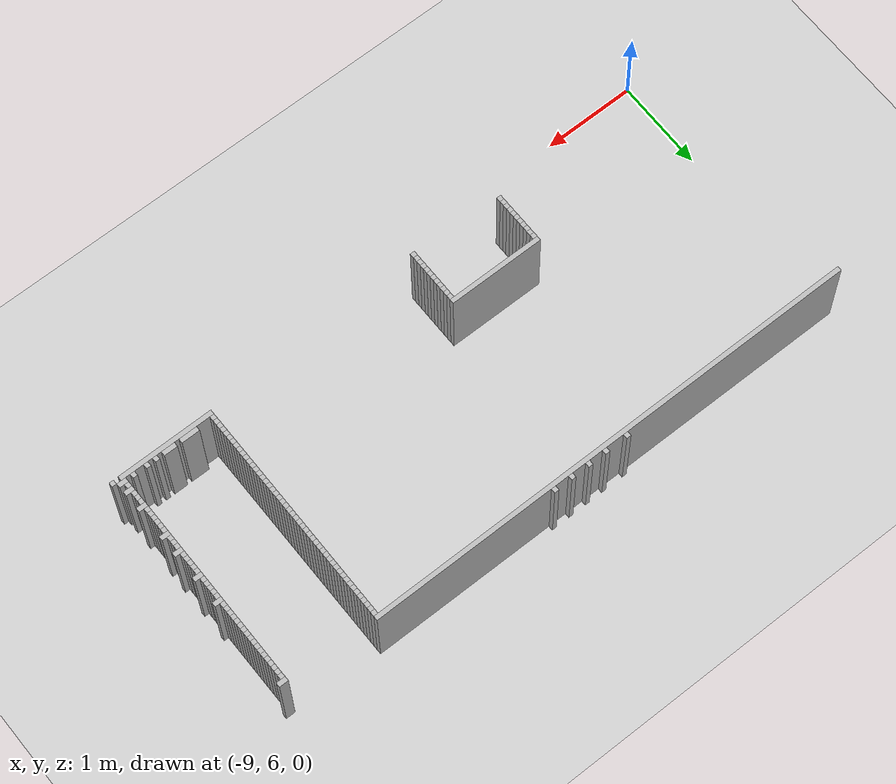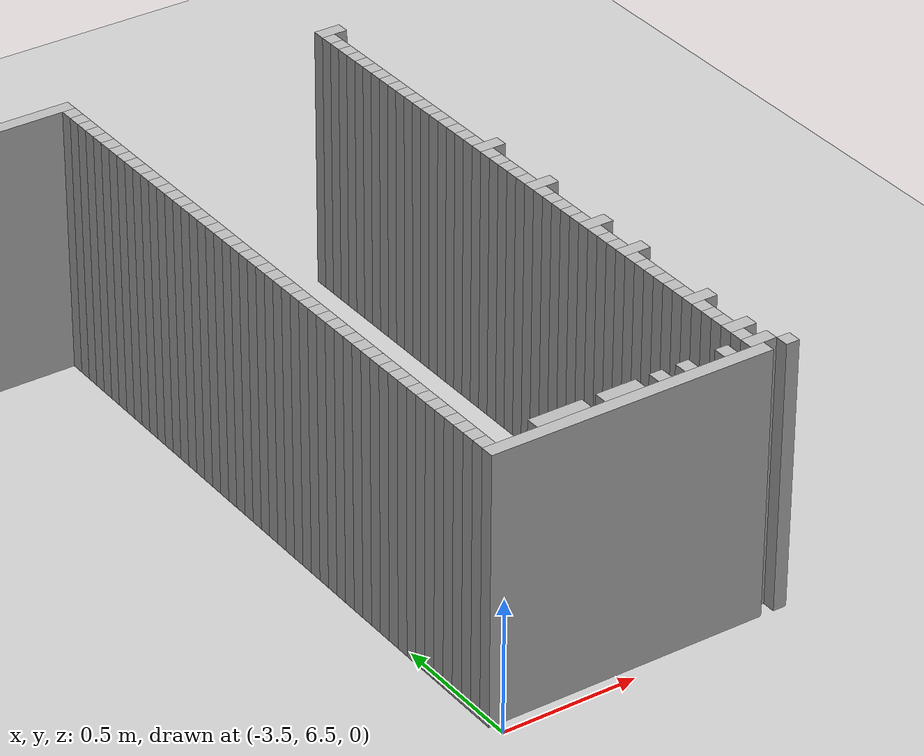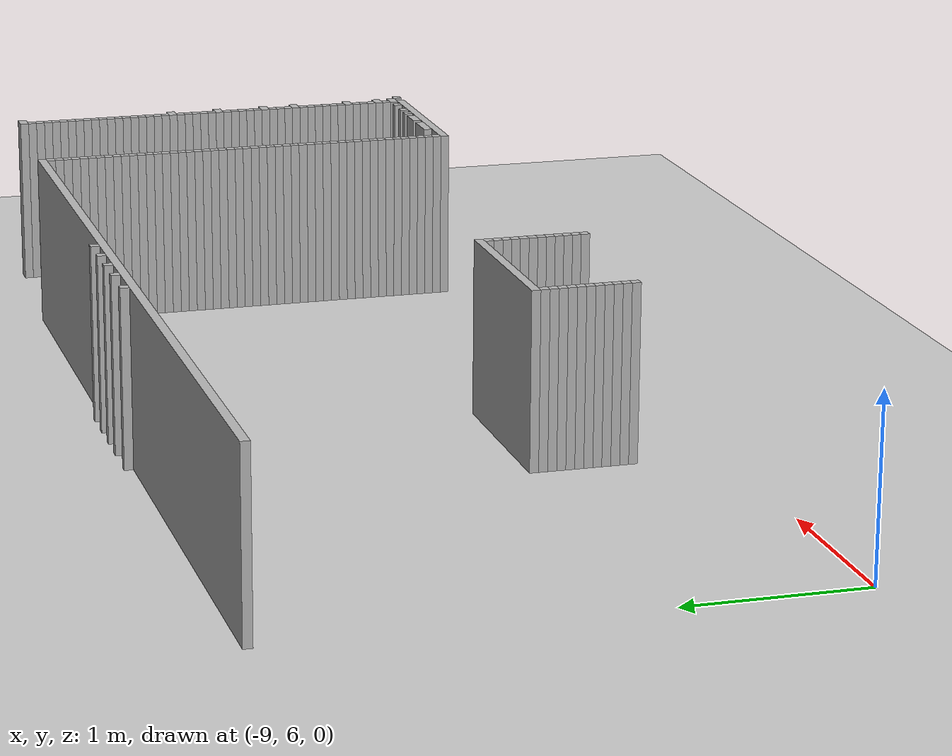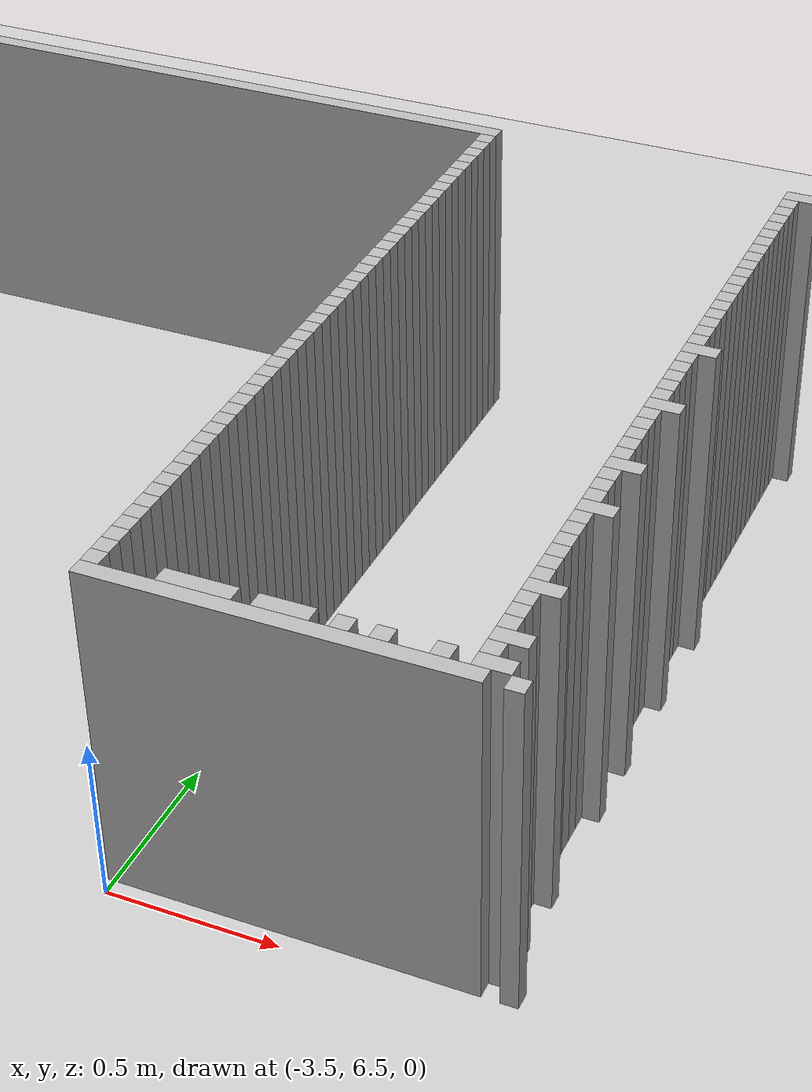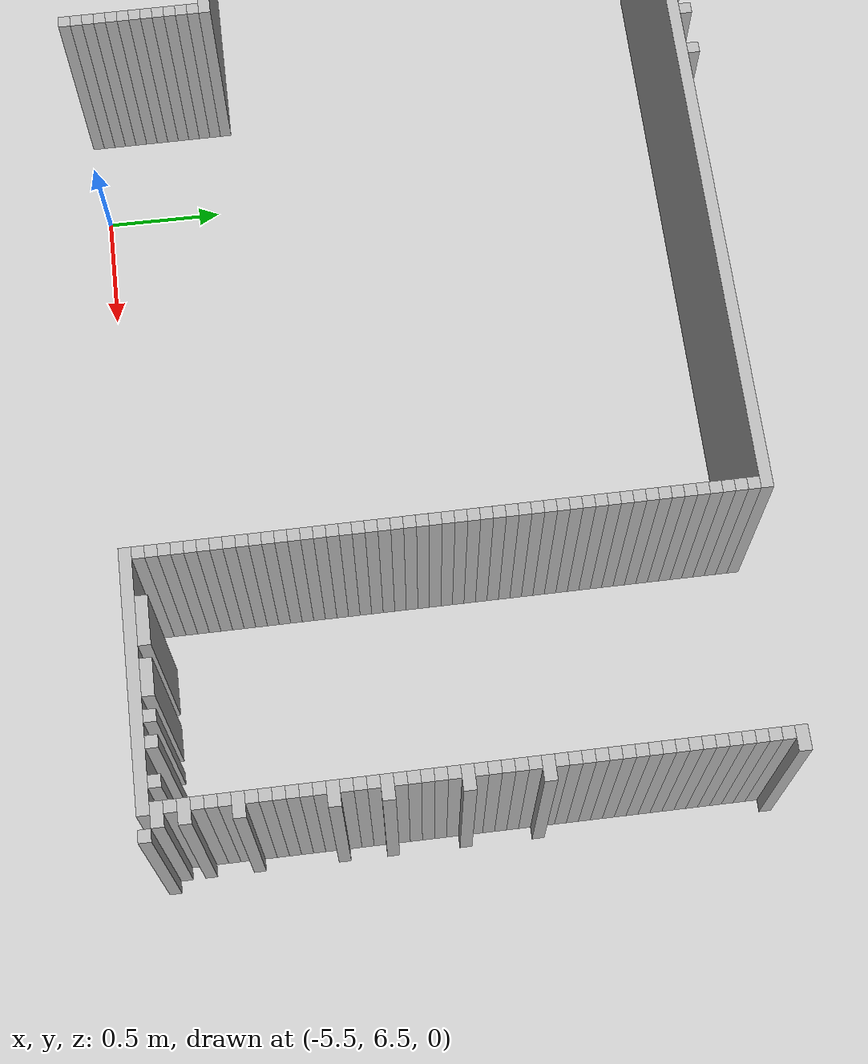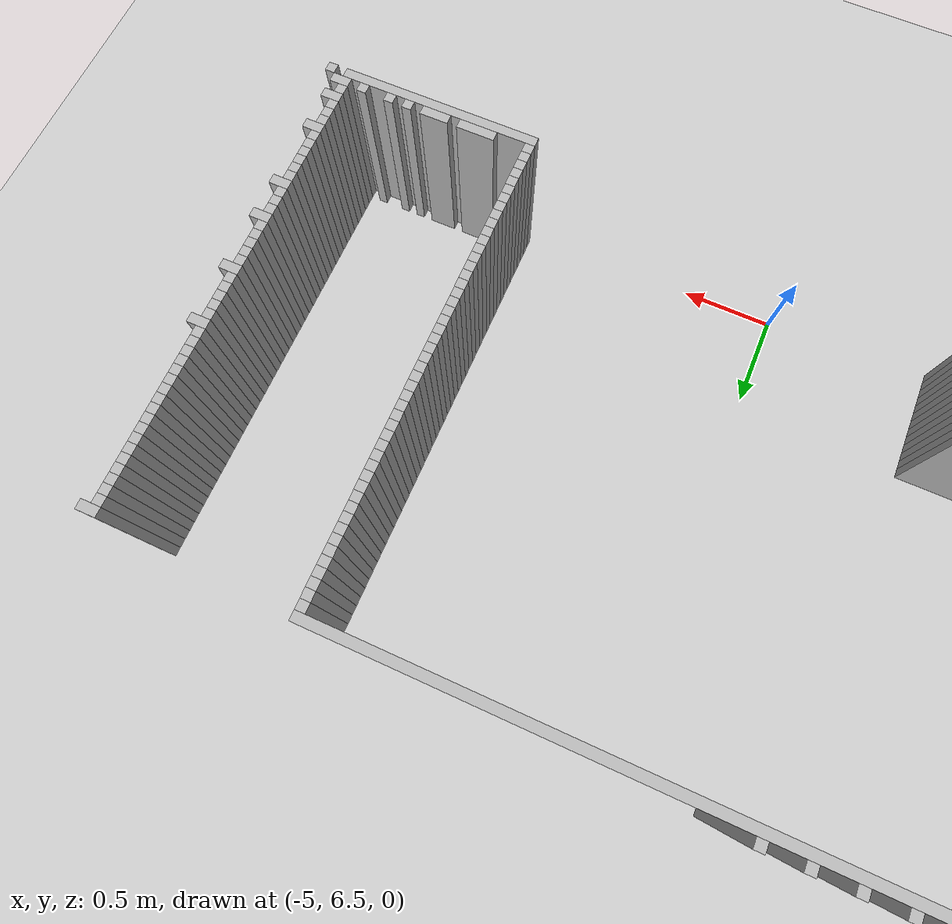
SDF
<sdf version="1.6">
 <world name="udh1_world">
  <include><uri>model://ground_plane</uri></include>
  <include><uri>model://sun</uri></include>
  <model name="wall_0">
   <static>true</static>
   <pose>-6.344999999999999 9.12 0.5 0 0 0</pose>
   <link name="link">
    <collision name="col"><geometry><box><size>0.05 0.05 1</size></box></geometry></collision>
    <visual name="vis"><geometry><box><size>0.05 0.05 1</size></box></geometry></visual>
   </link>
  </model>
  <model name="wall_1">
   <static>true</static>
   <pose>-6.094999999999999 9.12 0.5 0 0 0</pose>
   <link name="link">
    <collision name="col"><geometry><box><size>0.05 0.05 1</size></box></geometry></collision>
    <visual name="vis"><geometry><box><size>0.05 0.05 1</size></box></geometry></visual>
   </link>
  </model>
  <model name="wall_2">
   <static>true</static>
   <pose>-5.895 9.12 0.5 0 0 0</pose>
   <link name="link">
    <collision name="col"><geometry><box><size>0.05 0.05 1</size></box></geometry></collision>
    <visual name="vis"><geometry><box><size>0.05 0.05 1</size></box></geometry></visual>
   </link>
  </model>
  <model name="wall_3">
   <static>true</static>
   <pose>-5.694999999999999 9.12 0.5 0 0 0</pose>
   <link name="link">
    <collision name="col"><geometry><box><size>0.05 0.05 1</size></box></geometry></collision>
    <visual name="vis"><geometry><box><size>0.05 0.05 1</size></box></geometry></visual>
   </link>
  </model>
  <model name="wall_4">
   <static>true</static>
   <pose>-5.494999999999999 9.12 0.5 0 0 0</pose>
   <link name="link">
    <collision name="col"><geometry><box><size>0.05 0.05 1</size></box></geometry></collision>
    <visual name="vis"><geometry><box><size>0.05 0.05 1</size></box></geometry></visual>
   </link>
  </model>
  <model name="wall_5">
   <static>true</static>
   <pose>-6.219999999999999 9.069999999999999 0.5 0 0 0</pose>
   <link name="link">
    <collision name="col"><geometry><box><size>5.5 0.05 1</size></box></geometry></collision>
    <visual name="vis"><geometry><box><size>5.5 0.05 1</size></box></geometry></visual>
   </link>
  </model>
  <model name="wall_8">
   <static>true</static>
   <pose>-3.494999999999999 9.020000000000001 0.5 0 0 0</pose>
   <link name="link">
    <collision name="col"><geometry><box><size>0.05 0.05 1</size></box></geometry></collision>
    <visual name="vis"><geometry><box><size>0.05 0.05 1</size></box></geometry></visual>
   </link>
  </model>
  <model name="wall_9">
   <static>true</static>
   <pose>-2.469999999999999 9.020000000000001 0.5 0 0 0</pose>
   <link name="link">
    <collision name="col"><geometry><box><size>0.1 0.05 1</size></box></geometry></collision>
    <visual name="vis"><geometry><box><size>0.1 0.05 1</size></box></geometry></visual>
   </link>
  </model>
  <model name="wall_43">
   <static>true</static>
   <pose>-3.494999999999999 8.97 0.5 0 0 0</pose>
   <link name="link">
    <collision name="col"><geometry><box><size>0.05 0.05 1</size></box></geometry></collision>
    <visual name="vis"><geometry><box><size>0.05 0.05 1</size></box></geometry></visual>
   </link>
  </model>
  <model name="wall_44">
   <static>true</static>
   <pose>-2.494999999999999 8.97 0.5 0 0 0</pose>
   <link name="link">
    <collision name="col"><geometry><box><size>0.05 0.05 1</size></box></geometry></collision>
    <visual name="vis"><geometry><box><size>0.05 0.05 1</size></box></geometry></visual>
   </link>
  </model>
  <model name="wall_47">
   <static>true</static>
   <pose>-3.494999999999999 8.92 0.5 0 0 0</pose>
   <link name="link">
    <collision name="col"><geometry><box><size>0.05 0.05 1</size></box></geometry></collision>
    <visual name="vis"><geometry><box><size>0.05 0.05 1</size></box></geometry></visual>
   </link>
  </model>
  <model name="wall_48">
   <static>true</static>
   <pose>-2.494999999999999 8.92 0.5 0 0 0</pose>
   <link name="link">
    <collision name="col"><geometry><box><size>0.05 0.05 1</size></box></geometry></collision>
    <visual name="vis"><geometry><box><size>0.05 0.05 1</size></box></geometry></visual>
   </link>
  </model>
  <model name="wall_51">
   <static>true</static>
   <pose>-3.494999999999999 8.87 0.5 0 0 0</pose>
   <link name="link">
    <collision name="col"><geometry><box><size>0.05 0.05 1</size></box></geometry></collision>
    <visual name="vis"><geometry><box><size>0.05 0.05 1</size></box></geometry></visual>
   </link>
  </model>
  <model name="wall_52">
   <static>true</static>
   <pose>-2.494999999999999 8.87 0.5 0 0 0</pose>
   <link name="link">
    <collision name="col"><geometry><box><size>0.05 0.05 1</size></box></geometry></collision>
    <visual name="vis"><geometry><box><size>0.05 0.05 1</size></box></geometry></visual>
   </link>
  </model>
  <model name="wall_55">
   <static>true</static>
   <pose>-3.494999999999999 8.819999999999999 0.5 0 0 0</pose>
   <link name="link">
    <collision name="col"><geometry><box><size>0.05 0.05 1</size></box></geometry></collision>
    <visual name="vis"><geometry><box><size>0.05 0.05 1</size></box></geometry></visual>
   </link>
  </model>
  <model name="wall_56">
   <static>true</static>
   <pose>-2.494999999999999 8.819999999999999 0.5 0 0 0</pose>
   <link name="link">
    <collision name="col"><geometry><box><size>0.05 0.05 1</size></box></geometry></collision>
    <visual name="vis"><geometry><box><size>0.05 0.05 1</size></box></geometry></visual>
   </link>
  </model>
  <model name="wall_59">
   <static>true</static>
   <pose>-3.494999999999999 8.770000000000001 0.5 0 0 0</pose>
   <link name="link">
    <collision name="col"><geometry><box><size>0.05 0.05 1</size></box></geometry></collision>
    <visual name="vis"><geometry><box><size>0.05 0.05 1</size></box></geometry></visual>
   </link>
  </model>
  <model name="wall_60">
   <static>true</static>
   <pose>-2.494999999999999 8.770000000000001 0.5 0 0 0</pose>
   <link name="link">
    <collision name="col"><geometry><box><size>0.05 0.05 1</size></box></geometry></collision>
    <visual name="vis"><geometry><box><size>0.05 0.05 1</size></box></geometry></visual>
   </link>
  </model>
  <model name="wall_63">
   <static>true</static>
   <pose>-3.494999999999999 8.72 0.5 0 0 0</pose>
   <link name="link">
    <collision name="col"><geometry><box><size>0.05 0.05 1</size></box></geometry></collision>
    <visual name="vis"><geometry><box><size>0.05 0.05 1</size></box></geometry></visual>
   </link>
  </model>
  <model name="wall_64">
   <static>true</static>
   <pose>-2.494999999999999 8.72 0.5 0 0 0</pose>
   <link name="link">
    <collision name="col"><geometry><box><size>0.05 0.05 1</size></box></geometry></collision>
    <visual name="vis"><geometry><box><size>0.05 0.05 1</size></box></geometry></visual>
   </link>
  </model>
  <model name="wall_67">
   <static>true</static>
   <pose>-3.494999999999999 8.67 0.5 0 0 0</pose>
   <link name="link">
    <collision name="col"><geometry><box><size>0.05 0.05 1</size></box></geometry></collision>
    <visual name="vis"><geometry><box><size>0.05 0.05 1</size></box></geometry></visual>
   </link>
  </model>
  <model name="wall_68">
   <static>true</static>
   <pose>-2.494999999999999 8.67 0.5 0 0 0</pose>
   <link name="link">
    <collision name="col"><geometry><box><size>0.05 0.05 1</size></box></geometry></collision>
    <visual name="vis"><geometry><box><size>0.05 0.05 1</size></box></geometry></visual>
   </link>
  </model>
  <model name="wall_71">
   <static>true</static>
   <pose>-3.494999999999999 8.62 0.5 0 0 0</pose>
   <link name="link">
    <collision name="col"><geometry><box><size>0.05 0.05 1</size></box></geometry></collision>
    <visual name="vis"><geometry><box><size>0.05 0.05 1</size></box></geometry></visual>
   </link>
  </model>
  <model name="wall_72">
   <static>true</static>
   <pose>-2.494999999999999 8.62 0.5 0 0 0</pose>
   <link name="link">
    <collision name="col"><geometry><box><size>0.05 0.05 1</size></box></geometry></collision>
    <visual name="vis"><geometry><box><size>0.05 0.05 1</size></box></geometry></visual>
   </link>
  </model>
  <model name="wall_75">
   <static>true</static>
   <pose>-3.494999999999999 8.569999999999999 0.5 0 0 0</pose>
   <link name="link">
    <collision name="col"><geometry><box><size>0.05 0.05 1</size></box></geometry></collision>
    <visual name="vis"><geometry><box><size>0.05 0.05 1</size></box></geometry></visual>
   </link>
  </model>
  <model name="wall_76">
   <static>true</static>
   <pose>-2.494999999999999 8.569999999999999 0.5 0 0 0</pose>
   <link name="link">
    <collision name="col"><geometry><box><size>0.05 0.05 1</size></box></geometry></collision>
    <visual name="vis"><geometry><box><size>0.05 0.05 1</size></box></geometry></visual>
   </link>
  </model>
  <model name="wall_79">
   <static>true</static>
   <pose>-3.494999999999999 8.520000000000001 0.5 0 0 0</pose>
   <link name="link">
    <collision name="col"><geometry><box><size>0.05 0.05 1</size></box></geometry></collision>
    <visual name="vis"><geometry><box><size>0.05 0.05 1</size></box></geometry></visual>
   </link>
  </model>
  <model name="wall_80">
   <static>true</static>
   <pose>-2.494999999999999 8.520000000000001 0.5 0 0 0</pose>
   <link name="link">
    <collision name="col"><geometry><box><size>0.05 0.05 1</size></box></geometry></collision>
    <visual name="vis"><geometry><box><size>0.05 0.05 1</size></box></geometry></visual>
   </link>
  </model>
  <model name="wall_83">
   <static>true</static>
   <pose>-3.494999999999999 8.47 0.5 0 0 0</pose>
   <link name="link">
    <collision name="col"><geometry><box><size>0.05 0.05 1</size></box></geometry></collision>
    <visual name="vis"><geometry><box><size>0.05 0.05 1</size></box></geometry></visual>
   </link>
  </model>
  <model name="wall_84">
   <static>true</static>
   <pose>-2.494999999999999 8.47 0.5 0 0 0</pose>
   <link name="link">
    <collision name="col"><geometry><box><size>0.05 0.05 1</size></box></geometry></collision>
    <visual name="vis"><geometry><box><size>0.05 0.05 1</size></box></geometry></visual>
   </link>
  </model>
  <model name="wall_87">
   <static>true</static>
   <pose>-3.494999999999999 8.42 0.5 0 0 0</pose>
   <link name="link">
    <collision name="col"><geometry><box><size>0.05 0.05 1</size></box></geometry></collision>
    <visual name="vis"><geometry><box><size>0.05 0.05 1</size></box></geometry></visual>
   </link>
  </model>
  <model name="wall_88">
   <static>true</static>
   <pose>-2.494999999999999 8.42 0.5 0 0 0</pose>
   <link name="link">
    <collision name="col"><geometry><box><size>0.05 0.05 1</size></box></geometry></collision>
    <visual name="vis"><geometry><box><size>0.05 0.05 1</size></box></geometry></visual>
   </link>
  </model>
  <model name="wall_91">
   <static>true</static>
   <pose>-3.494999999999999 8.37 0.5 0 0 0</pose>
   <link name="link">
    <collision name="col"><geometry><box><size>0.05 0.05 1</size></box></geometry></collision>
    <visual name="vis"><geometry><box><size>0.05 0.05 1</size></box></geometry></visual>
   </link>
  </model>
  <model name="wall_92">
   <static>true</static>
   <pose>-2.494999999999999 8.37 0.5 0 0 0</pose>
   <link name="link">
    <collision name="col"><geometry><box><size>0.05 0.05 1</size></box></geometry></collision>
    <visual name="vis"><geometry><box><size>0.05 0.05 1</size></box></geometry></visual>
   </link>
  </model>
  <model name="wall_96">
   <static>true</static>
   <pose>-3.494999999999999 8.319999999999999 0.5 0 0 0</pose>
   <link name="link">
    <collision name="col"><geometry><box><size>0.05 0.05 1</size></box></geometry></collision>
    <visual name="vis"><geometry><box><size>0.05 0.05 1</size></box></geometry></visual>
   </link>
  </model>
  <model name="wall_97">
   <static>true</static>
   <pose>-2.494999999999999 8.319999999999999 0.5 0 0 0</pose>
   <link name="link">
    <collision name="col"><geometry><box><size>0.05 0.05 1</size></box></geometry></collision>
    <visual name="vis"><geometry><box><size>0.05 0.05 1</size></box></geometry></visual>
   </link>
  </model>
  <model name="wall_100">
   <static>true</static>
   <pose>-3.494999999999999 8.270000000000001 0.5 0 0 0</pose>
   <link name="link">
    <collision name="col"><geometry><box><size>0.05 0.05 1</size></box></geometry></collision>
    <visual name="vis"><geometry><box><size>0.05 0.05 1</size></box></geometry></visual>
   </link>
  </model>
  <model name="wall_101">
   <static>true</static>
   <pose>-2.494999999999999 8.270000000000001 0.5 0 0 0</pose>
   <link name="link">
    <collision name="col"><geometry><box><size>0.05 0.05 1</size></box></geometry></collision>
    <visual name="vis"><geometry><box><size>0.05 0.05 1</size></box></geometry></visual>
   </link>
  </model>
  <model name="wall_104">
   <static>true</static>
   <pose>-3.494999999999999 8.22 0.5 0 0 0</pose>
   <link name="link">
    <collision name="col"><geometry><box><size>0.05 0.05 1</size></box></geometry></collision>
    <visual name="vis"><geometry><box><size>0.05 0.05 1</size></box></geometry></visual>
   </link>
  </model>
  <model name="wall_105">
   <static>true</static>
   <pose>-2.494999999999999 8.22 0.5 0 0 0</pose>
   <link name="link">
    <collision name="col"><geometry><box><size>0.05 0.05 1</size></box></geometry></collision>
    <visual name="vis"><geometry><box><size>0.05 0.05 1</size></box></geometry></visual>
   </link>
  </model>
  <model name="wall_108">
   <static>true</static>
   <pose>-3.494999999999999 8.17 0.5 0 0 0</pose>
   <link name="link">
    <collision name="col"><geometry><box><size>0.05 0.05 1</size></box></geometry></collision>
    <visual name="vis"><geometry><box><size>0.05 0.05 1</size></box></geometry></visual>
   </link>
  </model>
  <model name="wall_109">
   <static>true</static>
   <pose>-2.494999999999999 8.17 0.5 0 0 0</pose>
   <link name="link">
    <collision name="col"><geometry><box><size>0.05 0.05 1</size></box></geometry></collision>
    <visual name="vis"><geometry><box><size>0.05 0.05 1</size></box></geometry></visual>
   </link>
  </model>
  <model name="wall_113">
   <static>true</static>
   <pose>-3.494999999999999 8.12 0.5 0 0 0</pose>
   <link name="link">
    <collision name="col"><geometry><box><size>0.05 0.05 1</size></box></geometry></collision>
    <visual name="vis"><geometry><box><size>0.05 0.05 1</size></box></geometry></visual>
   </link>
  </model>
  <model name="wall_114">
   <static>true</static>
   <pose>-2.494999999999999 8.12 0.5 0 0 0</pose>
   <link name="link">
    <collision name="col"><geometry><box><size>0.05 0.05 1</size></box></geometry></collision>
    <visual name="vis"><geometry><box><size>0.05 0.05 1</size></box></geometry></visual>
   </link>
  </model>
  <model name="wall_117">
   <static>true</static>
   <pose>-3.494999999999999 8.069999999999999 0.5 0 0 0</pose>
   <link name="link">
    <collision name="col"><geometry><box><size>0.05 0.05 1</size></box></geometry></collision>
    <visual name="vis"><geometry><box><size>0.05 0.05 1</size></box></geometry></visual>
   </link>
  </model>
  <model name="wall_118">
   <static>true</static>
   <pose>-2.469999999999999 8.069999999999999 0.5 0 0 0</pose>
   <link name="link">
    <collision name="col"><geometry><box><size>0.1 0.05 1</size></box></geometry></collision>
    <visual name="vis"><geometry><box><size>0.1 0.05 1</size></box></geometry></visual>
   </link>
  </model>
  <model name="wall_121">
   <static>true</static>
   <pose>-3.494999999999999 8.020000000000001 0.5 0 0 0</pose>
   <link name="link">
    <collision name="col"><geometry><box><size>0.05 0.05 1</size></box></geometry></collision>
    <visual name="vis"><geometry><box><size>0.05 0.05 1</size></box></geometry></visual>
   </link>
  </model>
  <model name="wall_122">
   <static>true</static>
   <pose>-2.494999999999999 8.020000000000001 0.5 0 0 0</pose>
   <link name="link">
    <collision name="col"><geometry><box><size>0.05 0.05 1</size></box></geometry></collision>
    <visual name="vis"><geometry><box><size>0.05 0.05 1</size></box></geometry></visual>
   </link>
  </model>
  <model name="wall_125">
   <static>true</static>
   <pose>-3.494999999999999 7.970000000000001 0.5 0 0 0</pose>
   <link name="link">
    <collision name="col"><geometry><box><size>0.05 0.05 1</size></box></geometry></collision>
    <visual name="vis"><geometry><box><size>0.05 0.05 1</size></box></geometry></visual>
   </link>
  </model>
  <model name="wall_126">
   <static>true</static>
   <pose>-2.494999999999999 7.970000000000001 0.5 0 0 0</pose>
   <link name="link">
    <collision name="col"><geometry><box><size>0.05 0.05 1</size></box></geometry></collision>
    <visual name="vis"><geometry><box><size>0.05 0.05 1</size></box></geometry></visual>
   </link>
  </model>
  <model name="wall_129">
   <static>true</static>
   <pose>-3.494999999999999 7.92 0.5 0 0 0</pose>
   <link name="link">
    <collision name="col"><geometry><box><size>0.05 0.05 1</size></box></geometry></collision>
    <visual name="vis"><geometry><box><size>0.05 0.05 1</size></box></geometry></visual>
   </link>
  </model>
  <model name="wall_130">
   <static>true</static>
   <pose>-2.494999999999999 7.92 0.5 0 0 0</pose>
   <link name="link">
    <collision name="col"><geometry><box><size>0.05 0.05 1</size></box></geometry></collision>
    <visual name="vis"><geometry><box><size>0.05 0.05 1</size></box></geometry></visual>
   </link>
  </model>
  <model name="wall_133">
   <static>true</static>
   <pose>-3.494999999999999 7.869999999999999 0.5 0 0 0</pose>
   <link name="link">
    <collision name="col"><geometry><box><size>0.05 0.05 1</size></box></geometry></collision>
    <visual name="vis"><geometry><box><size>0.05 0.05 1</size></box></geometry></visual>
   </link>
  </model>
  <model name="wall_134">
   <static>true</static>
   <pose>-2.494999999999999 7.869999999999999 0.5 0 0 0</pose>
   <link name="link">
    <collision name="col"><geometry><box><size>0.05 0.05 1</size></box></geometry></collision>
    <visual name="vis"><geometry><box><size>0.05 0.05 1</size></box></geometry></visual>
   </link>
  </model>
  <model name="wall_138">
   <static>true</static>
   <pose>-3.494999999999999 7.8199999999999985 0.5 0 0 0</pose>
   <link name="link">
    <collision name="col"><geometry><box><size>0.05 0.05 1</size></box></geometry></collision>
    <visual name="vis"><geometry><box><size>0.05 0.05 1</size></box></geometry></visual>
   </link>
  </model>
  <model name="wall_139">
   <static>true</static>
   <pose>-2.494999999999999 7.8199999999999985 0.5 0 0 0</pose>
   <link name="link">
    <collision name="col"><geometry><box><size>0.05 0.05 1</size></box></geometry></collision>
    <visual name="vis"><geometry><box><size>0.05 0.05 1</size></box></geometry></visual>
   </link>
  </model>
  <model name="wall_142">
   <static>true</static>
   <pose>-3.494999999999999 7.770000000000001 0.5 0 0 0</pose>
   <link name="link">
    <collision name="col"><geometry><box><size>0.05 0.05 1</size></box></geometry></collision>
    <visual name="vis"><geometry><box><size>0.05 0.05 1</size></box></geometry></visual>
   </link>
  </model>
  <model name="wall_143">
   <static>true</static>
   <pose>-2.469999999999999 7.770000000000001 0.5 0 0 0</pose>
   <link name="link">
    <collision name="col"><geometry><box><size>0.1 0.05 1</size></box></geometry></collision>
    <visual name="vis"><geometry><box><size>0.1 0.05 1</size></box></geometry></visual>
   </link>
  </model>
  <model name="wall_146">
   <static>true</static>
   <pose>-3.494999999999999 7.720000000000001 0.5 0 0 0</pose>
   <link name="link">
    <collision name="col"><geometry><box><size>0.05 0.05 1</size></box></geometry></collision>
    <visual name="vis"><geometry><box><size>0.05 0.05 1</size></box></geometry></visual>
   </link>
  </model>
  <model name="wall_147">
   <static>true</static>
   <pose>-2.494999999999999 7.720000000000001 0.5 0 0 0</pose>
   <link name="link">
    <collision name="col"><geometry><box><size>0.05 0.05 1</size></box></geometry></collision>
    <visual name="vis"><geometry><box><size>0.05 0.05 1</size></box></geometry></visual>
   </link>
  </model>
  <model name="wall_151">
   <static>true</static>
   <pose>-3.494999999999999 7.67 0.5 0 0 0</pose>
   <link name="link">
    <collision name="col"><geometry><box><size>0.05 0.05 1</size></box></geometry></collision>
    <visual name="vis"><geometry><box><size>0.05 0.05 1</size></box></geometry></visual>
   </link>
  </model>
  <model name="wall_152">
   <static>true</static>
   <pose>-2.494999999999999 7.67 0.5 0 0 0</pose>
   <link name="link">
    <collision name="col"><geometry><box><size>0.05 0.05 1</size></box></geometry></collision>
    <visual name="vis"><geometry><box><size>0.05 0.05 1</size></box></geometry></visual>
   </link>
  </model>
  <model name="wall_155">
   <static>true</static>
   <pose>-3.494999999999999 7.619999999999999 0.5 0 0 0</pose>
   <link name="link">
    <collision name="col"><geometry><box><size>0.05 0.05 1</size></box></geometry></collision>
    <visual name="vis"><geometry><box><size>0.05 0.05 1</size></box></geometry></visual>
   </link>
  </model>
  <model name="wall_156">
   <static>true</static>
   <pose>-2.494999999999999 7.619999999999999 0.5 0 0 0</pose>
   <link name="link">
    <collision name="col"><geometry><box><size>0.05 0.05 1</size></box></geometry></collision>
    <visual name="vis"><geometry><box><size>0.05 0.05 1</size></box></geometry></visual>
   </link>
  </model>
  <model name="wall_159">
   <static>true</static>
   <pose>-3.494999999999999 7.5699999999999985 0.5 0 0 0</pose>
   <link name="link">
    <collision name="col"><geometry><box><size>0.05 0.05 1</size></box></geometry></collision>
    <visual name="vis"><geometry><box><size>0.05 0.05 1</size></box></geometry></visual>
   </link>
  </model>
  <model name="wall_160">
   <static>true</static>
   <pose>-2.494999999999999 7.5699999999999985 0.5 0 0 0</pose>
   <link name="link">
    <collision name="col"><geometry><box><size>0.05 0.05 1</size></box></geometry></collision>
    <visual name="vis"><geometry><box><size>0.05 0.05 1</size></box></geometry></visual>
   </link>
  </model>
  <model name="wall_163">
   <static>true</static>
   <pose>-3.494999999999999 7.520000000000001 0.5 0 0 0</pose>
   <link name="link">
    <collision name="col"><geometry><box><size>0.05 0.05 1</size></box></geometry></collision>
    <visual name="vis"><geometry><box><size>0.05 0.05 1</size></box></geometry></visual>
   </link>
  </model>
  <model name="wall_164">
   <static>true</static>
   <pose>-2.494999999999999 7.520000000000001 0.5 0 0 0</pose>
   <link name="link">
    <collision name="col"><geometry><box><size>0.05 0.05 1</size></box></geometry></collision>
    <visual name="vis"><geometry><box><size>0.05 0.05 1</size></box></geometry></visual>
   </link>
  </model>
  <model name="wall_167">
   <static>true</static>
   <pose>-3.494999999999999 7.470000000000001 0.5 0 0 0</pose>
   <link name="link">
    <collision name="col"><geometry><box><size>0.05 0.05 1</size></box></geometry></collision>
    <visual name="vis"><geometry><box><size>0.05 0.05 1</size></box></geometry></visual>
   </link>
  </model>
  <model name="wall_168">
   <static>true</static>
   <pose>-2.469999999999999 7.470000000000001 0.5 0 0 0</pose>
   <link name="link">
    <collision name="col"><geometry><box><size>0.1 0.05 1</size></box></geometry></collision>
    <visual name="vis"><geometry><box><size>0.1 0.05 1</size></box></geometry></visual>
   </link>
  </model>
  <model name="wall_172">
   <static>true</static>
   <pose>-3.494999999999999 7.42 0.5 0 0 0</pose>
   <link name="link">
    <collision name="col"><geometry><box><size>0.05 0.05 1</size></box></geometry></collision>
    <visual name="vis"><geometry><box><size>0.05 0.05 1</size></box></geometry></visual>
   </link>
  </model>
  <model name="wall_173">
   <static>true</static>
   <pose>-2.494999999999999 7.42 0.5 0 0 0</pose>
   <link name="link">
    <collision name="col"><geometry><box><size>0.05 0.05 1</size></box></geometry></collision>
    <visual name="vis"><geometry><box><size>0.05 0.05 1</size></box></geometry></visual>
   </link>
  </model>
  <model name="wall_176">
   <static>true</static>
   <pose>-3.494999999999999 7.369999999999999 0.5 0 0 0</pose>
   <link name="link">
    <collision name="col"><geometry><box><size>0.05 0.05 1</size></box></geometry></collision>
    <visual name="vis"><geometry><box><size>0.05 0.05 1</size></box></geometry></visual>
   </link>
  </model>
  <model name="wall_177">
   <static>true</static>
   <pose>-2.494999999999999 7.369999999999999 0.5 0 0 0</pose>
   <link name="link">
    <collision name="col"><geometry><box><size>0.05 0.05 1</size></box></geometry></collision>
    <visual name="vis"><geometry><box><size>0.05 0.05 1</size></box></geometry></visual>
   </link>
  </model>
  <model name="wall_180">
   <static>true</static>
   <pose>-3.494999999999999 7.3199999999999985 0.5 0 0 0</pose>
   <link name="link">
    <collision name="col"><geometry><box><size>0.05 0.05 1</size></box></geometry></collision>
    <visual name="vis"><geometry><box><size>0.05 0.05 1</size></box></geometry></visual>
   </link>
  </model>
  <model name="wall_181">
   <static>true</static>
   <pose>-2.494999999999999 7.3199999999999985 0.5 0 0 0</pose>
   <link name="link">
    <collision name="col"><geometry><box><size>0.05 0.05 1</size></box></geometry></collision>
    <visual name="vis"><geometry><box><size>0.05 0.05 1</size></box></geometry></visual>
   </link>
  </model>
  <model name="wall_184">
   <static>true</static>
   <pose>-3.494999999999999 7.270000000000001 0.5 0 0 0</pose>
   <link name="link">
    <collision name="col"><geometry><box><size>0.05 0.05 1</size></box></geometry></collision>
    <visual name="vis"><geometry><box><size>0.05 0.05 1</size></box></geometry></visual>
   </link>
  </model>
  <model name="wall_185">
   <static>true</static>
   <pose>-2.469999999999999 7.270000000000001 0.5 0 0 0</pose>
   <link name="link">
    <collision name="col"><geometry><box><size>0.1 0.05 1</size></box></geometry></collision>
    <visual name="vis"><geometry><box><size>0.1 0.05 1</size></box></geometry></visual>
   </link>
  </model>
  <model name="wall_188">
   <static>true</static>
   <pose>-3.494999999999999 7.220000000000001 0.5 0 0 0</pose>
   <link name="link">
    <collision name="col"><geometry><box><size>0.05 0.05 1</size></box></geometry></collision>
    <visual name="vis"><geometry><box><size>0.05 0.05 1</size></box></geometry></visual>
   </link>
  </model>
  <model name="wall_189">
   <static>true</static>
   <pose>-2.494999999999999 7.220000000000001 0.5 0 0 0</pose>
   <link name="link">
    <collision name="col"><geometry><box><size>0.05 0.05 1</size></box></geometry></collision>
    <visual name="vis"><geometry><box><size>0.05 0.05 1</size></box></geometry></visual>
   </link>
  </model>
  <model name="wall_192">
   <static>true</static>
   <pose>-3.494999999999999 7.17 0.5 0 0 0</pose>
   <link name="link">
    <collision name="col"><geometry><box><size>0.05 0.05 1</size></box></geometry></collision>
    <visual name="vis"><geometry><box><size>0.05 0.05 1</size></box></geometry></visual>
   </link>
  </model>
  <model name="wall_193">
   <static>true</static>
   <pose>-2.494999999999999 7.17 0.5 0 0 0</pose>
   <link name="link">
    <collision name="col"><geometry><box><size>0.05 0.05 1</size></box></geometry></collision>
    <visual name="vis"><geometry><box><size>0.05 0.05 1</size></box></geometry></visual>
   </link>
  </model>
  <model name="wall_196">
   <static>true</static>
   <pose>-3.494999999999999 7.119999999999999 0.5 0 0 0</pose>
   <link name="link">
    <collision name="col"><geometry><box><size>0.05 0.05 1</size></box></geometry></collision>
    <visual name="vis"><geometry><box><size>0.05 0.05 1</size></box></geometry></visual>
   </link>
  </model>
  <model name="wall_197">
   <static>true</static>
   <pose>-2.494999999999999 7.119999999999999 0.5 0 0 0</pose>
   <link name="link">
    <collision name="col"><geometry><box><size>0.05 0.05 1</size></box></geometry></collision>
    <visual name="vis"><geometry><box><size>0.05 0.05 1</size></box></geometry></visual>
   </link>
  </model>
  <model name="wall_201">
   <static>true</static>
   <pose>-6.444999999999999 7.0699999999999985 0.5 0 0 0</pose>
   <link name="link">
    <collision name="col"><geometry><box><size>1.05 0.05 1</size></box></geometry></collision>
    <visual name="vis"><geometry><box><size>1.05 0.05 1</size></box></geometry></visual>
   </link>
  </model>
  <model name="wall_202">
   <static>true</static>
   <pose>-3.494999999999999 7.0699999999999985 0.5 0 0 0</pose>
   <link name="link">
    <collision name="col"><geometry><box><size>0.05 0.05 1</size></box></geometry></collision>
    <visual name="vis"><geometry><box><size>0.05 0.05 1</size></box></geometry></visual>
   </link>
  </model>
  <model name="wall_203">
   <static>true</static>
   <pose>-2.494999999999999 7.0699999999999985 0.5 0 0 0</pose>
   <link name="link">
    <collision name="col"><geometry><box><size>0.05 0.05 1</size></box></geometry></collision>
    <visual name="vis"><geometry><box><size>0.05 0.05 1</size></box></geometry></visual>
   </link>
  </model>
  <model name="wall_208">
   <static>true</static>
   <pose>-6.944999999999999 7.020000000000001 0.5 0 0 0</pose>
   <link name="link">
    <collision name="col"><geometry><box><size>0.05 0.05 1</size></box></geometry></collision>
    <visual name="vis"><geometry><box><size>0.05 0.05 1</size></box></geometry></visual>
   </link>
  </model>
  <model name="wall_209">
   <static>true</static>
   <pose>-5.944999999999999 7.020000000000001 0.5 0 0 0</pose>
   <link name="link">
    <collision name="col"><geometry><box><size>0.05 0.05 1</size></box></geometry></collision>
    <visual name="vis"><geometry><box><size>0.05 0.05 1</size></box></geometry></visual>
   </link>
  </model>
  <model name="wall_210">
   <static>true</static>
   <pose>-3.494999999999999 7.020000000000001 0.5 0 0 0</pose>
   <link name="link">
    <collision name="col"><geometry><box><size>0.05 0.05 1</size></box></geometry></collision>
    <visual name="vis"><geometry><box><size>0.05 0.05 1</size></box></geometry></visual>
   </link>
  </model>
  <model name="wall_211">
   <static>true</static>
   <pose>-2.494999999999999 7.020000000000001 0.5 0 0 0</pose>
   <link name="link">
    <collision name="col"><geometry><box><size>0.05 0.05 1</size></box></geometry></collision>
    <visual name="vis"><geometry><box><size>0.05 0.05 1</size></box></geometry></visual>
   </link>
  </model>
  <model name="wall_216">
   <static>true</static>
   <pose>-6.944999999999999 6.970000000000001 0.5 0 0 0</pose>
   <link name="link">
    <collision name="col"><geometry><box><size>0.05 0.05 1</size></box></geometry></collision>
    <visual name="vis"><geometry><box><size>0.05 0.05 1</size></box></geometry></visual>
   </link>
  </model>
  <model name="wall_217">
   <static>true</static>
   <pose>-5.944999999999999 6.970000000000001 0.5 0 0 0</pose>
   <link name="link">
    <collision name="col"><geometry><box><size>0.05 0.05 1</size></box></geometry></collision>
    <visual name="vis"><geometry><box><size>0.05 0.05 1</size></box></geometry></visual>
   </link>
  </model>
  <model name="wall_218">
   <static>true</static>
   <pose>-3.494999999999999 6.970000000000001 0.5 0 0 0</pose>
   <link name="link">
    <collision name="col"><geometry><box><size>0.05 0.05 1</size></box></geometry></collision>
    <visual name="vis"><geometry><box><size>0.05 0.05 1</size></box></geometry></visual>
   </link>
  </model>
  <model name="wall_219">
   <static>true</static>
   <pose>-2.494999999999999 6.970000000000001 0.5 0 0 0</pose>
   <link name="link">
    <collision name="col"><geometry><box><size>0.05 0.05 1</size></box></geometry></collision>
    <visual name="vis"><geometry><box><size>0.05 0.05 1</size></box></geometry></visual>
   </link>
  </model>
  <model name="wall_225">
   <static>true</static>
   <pose>-6.944999999999999 6.92 0.5 0 0 0</pose>
   <link name="link">
    <collision name="col"><geometry><box><size>0.05 0.05 1</size></box></geometry></collision>
    <visual name="vis"><geometry><box><size>0.05 0.05 1</size></box></geometry></visual>
   </link>
  </model>
  <model name="wall_226">
   <static>true</static>
   <pose>-5.944999999999999 6.92 0.5 0 0 0</pose>
   <link name="link">
    <collision name="col"><geometry><box><size>0.05 0.05 1</size></box></geometry></collision>
    <visual name="vis"><geometry><box><size>0.05 0.05 1</size></box></geometry></visual>
   </link>
  </model>
  <model name="wall_227">
   <static>true</static>
   <pose>-3.494999999999999 6.92 0.5 0 0 0</pose>
   <link name="link">
    <collision name="col"><geometry><box><size>0.05 0.05 1</size></box></geometry></collision>
    <visual name="vis"><geometry><box><size>0.05 0.05 1</size></box></geometry></visual>
   </link>
  </model>
  <model name="wall_228">
   <static>true</static>
   <pose>-2.469999999999999 6.92 0.5 0 0 0</pose>
   <link name="link">
    <collision name="col"><geometry><box><size>0.1 0.05 1</size></box></geometry></collision>
    <visual name="vis"><geometry><box><size>0.1 0.05 1</size></box></geometry></visual>
   </link>
  </model>
  <model name="wall_233">
   <static>true</static>
   <pose>-6.944999999999999 6.869999999999999 0.5 0 0 0</pose>
   <link name="link">
    <collision name="col"><geometry><box><size>0.05 0.05 1</size></box></geometry></collision>
    <visual name="vis"><geometry><box><size>0.05 0.05 1</size></box></geometry></visual>
   </link>
  </model>
  <model name="wall_234">
   <static>true</static>
   <pose>-5.944999999999999 6.869999999999999 0.5 0 0 0</pose>
   <link name="link">
    <collision name="col"><geometry><box><size>0.05 0.05 1</size></box></geometry></collision>
    <visual name="vis"><geometry><box><size>0.05 0.05 1</size></box></geometry></visual>
   </link>
  </model>
  <model name="wall_235">
   <static>true</static>
   <pose>-3.494999999999999 6.869999999999999 0.5 0 0 0</pose>
   <link name="link">
    <collision name="col"><geometry><box><size>0.05 0.05 1</size></box></geometry></collision>
    <visual name="vis"><geometry><box><size>0.05 0.05 1</size></box></geometry></visual>
   </link>
  </model>
  <model name="wall_236">
   <static>true</static>
   <pose>-2.494999999999999 6.869999999999999 0.5 0 0 0</pose>
   <link name="link">
    <collision name="col"><geometry><box><size>0.05 0.05 1</size></box></geometry></collision>
    <visual name="vis"><geometry><box><size>0.05 0.05 1</size></box></geometry></visual>
   </link>
  </model>
  <model name="wall_241">
   <static>true</static>
   <pose>-6.944999999999999 6.82 0.5 0 0 0</pose>
   <link name="link">
    <collision name="col"><geometry><box><size>0.05 0.05 1</size></box></geometry></collision>
    <visual name="vis"><geometry><box><size>0.05 0.05 1</size></box></geometry></visual>
   </link>
  </model>
  <model name="wall_242">
   <static>true</static>
   <pose>-5.944999999999999 6.82 0.5 0 0 0</pose>
   <link name="link">
    <collision name="col"><geometry><box><size>0.05 0.05 1</size></box></geometry></collision>
    <visual name="vis"><geometry><box><size>0.05 0.05 1</size></box></geometry></visual>
   </link>
  </model>
  <model name="wall_243">
   <static>true</static>
   <pose>-3.494999999999999 6.82 0.5 0 0 0</pose>
   <link name="link">
    <collision name="col"><geometry><box><size>0.05 0.05 1</size></box></geometry></collision>
    <visual name="vis"><geometry><box><size>0.05 0.05 1</size></box></geometry></visual>
   </link>
  </model>
  <model name="wall_244">
   <static>true</static>
   <pose>-2.494999999999999 6.82 0.5 0 0 0</pose>
   <link name="link">
    <collision name="col"><geometry><box><size>0.05 0.05 1</size></box></geometry></collision>
    <visual name="vis"><geometry><box><size>0.05 0.05 1</size></box></geometry></visual>
   </link>
  </model>
  <model name="wall_249">
   <static>true</static>
   <pose>-6.944999999999999 6.77 0.5 0 0 0</pose>
   <link name="link">
    <collision name="col"><geometry><box><size>0.05 0.05 1</size></box></geometry></collision>
    <visual name="vis"><geometry><box><size>0.05 0.05 1</size></box></geometry></visual>
   </link>
  </model>
  <model name="wall_250">
   <static>true</static>
   <pose>-5.944999999999999 6.77 0.5 0 0 0</pose>
   <link name="link">
    <collision name="col"><geometry><box><size>0.05 0.05 1</size></box></geometry></collision>
    <visual name="vis"><geometry><box><size>0.05 0.05 1</size></box></geometry></visual>
   </link>
  </model>
  <model name="wall_251">
   <static>true</static>
   <pose>-3.494999999999999 6.77 0.5 0 0 0</pose>
   <link name="link">
    <collision name="col"><geometry><box><size>0.05 0.05 1</size></box></geometry></collision>
    <visual name="vis"><geometry><box><size>0.05 0.05 1</size></box></geometry></visual>
   </link>
  </model>
  <model name="wall_252">
   <static>true</static>
   <pose>-2.494999999999999 6.77 0.5 0 0 0</pose>
   <link name="link">
    <collision name="col"><geometry><box><size>0.05 0.05 1</size></box></geometry></collision>
    <visual name="vis"><geometry><box><size>0.05 0.05 1</size></box></geometry></visual>
   </link>
  </model>
  <model name="wall_257">
   <static>true</static>
   <pose>-6.944999999999999 6.720000000000001 0.5 0 0 0</pose>
   <link name="link">
    <collision name="col"><geometry><box><size>0.05 0.05 1</size></box></geometry></collision>
    <visual name="vis"><geometry><box><size>0.05 0.05 1</size></box></geometry></visual>
   </link>
  </model>
  <model name="wall_258">
   <static>true</static>
   <pose>-5.944999999999999 6.720000000000001 0.5 0 0 0</pose>
   <link name="link">
    <collision name="col"><geometry><box><size>0.05 0.05 1</size></box></geometry></collision>
    <visual name="vis"><geometry><box><size>0.05 0.05 1</size></box></geometry></visual>
   </link>
  </model>
  <model name="wall_259">
   <static>true</static>
   <pose>-3.494999999999999 6.720000000000001 0.5 0 0 0</pose>
   <link name="link">
    <collision name="col"><geometry><box><size>0.05 0.05 1</size></box></geometry></collision>
    <visual name="vis"><geometry><box><size>0.05 0.05 1</size></box></geometry></visual>
   </link>
  </model>
  <model name="wall_260">
   <static>true</static>
   <pose>-2.469999999999999 6.720000000000001 0.5 0 0 0</pose>
   <link name="link">
    <collision name="col"><geometry><box><size>0.1 0.05 1</size></box></geometry></collision>
    <visual name="vis"><geometry><box><size>0.1 0.05 1</size></box></geometry></visual>
   </link>
  </model>
  <model name="wall_265">
   <static>true</static>
   <pose>-6.944999999999999 6.67 0.5 0 0 0</pose>
   <link name="link">
    <collision name="col"><geometry><box><size>0.05 0.05 1</size></box></geometry></collision>
    <visual name="vis"><geometry><box><size>0.05 0.05 1</size></box></geometry></visual>
   </link>
  </model>
  <model name="wall_266">
   <static>true</static>
   <pose>-5.944999999999999 6.67 0.5 0 0 0</pose>
   <link name="link">
    <collision name="col"><geometry><box><size>0.05 0.05 1</size></box></geometry></collision>
    <visual name="vis"><geometry><box><size>0.05 0.05 1</size></box></geometry></visual>
   </link>
  </model>
  <model name="wall_267">
   <static>true</static>
   <pose>-3.494999999999999 6.67 0.5 0 0 0</pose>
   <link name="link">
    <collision name="col"><geometry><box><size>0.05 0.05 1</size></box></geometry></collision>
    <visual name="vis"><geometry><box><size>0.05 0.05 1</size></box></geometry></visual>
   </link>
  </model>
  <model name="wall_268">
   <static>true</static>
   <pose>-2.494999999999999 6.67 0.5 0 0 0</pose>
   <link name="link">
    <collision name="col"><geometry><box><size>0.05 0.05 1</size></box></geometry></collision>
    <visual name="vis"><geometry><box><size>0.05 0.05 1</size></box></geometry></visual>
   </link>
  </model>
  <model name="wall_273">
   <static>true</static>
   <pose>-6.944999999999999 6.619999999999999 0.5 0 0 0</pose>
   <link name="link">
    <collision name="col"><geometry><box><size>0.05 0.05 1</size></box></geometry></collision>
    <visual name="vis"><geometry><box><size>0.05 0.05 1</size></box></geometry></visual>
   </link>
  </model>
  <model name="wall_274">
   <static>true</static>
   <pose>-5.944999999999999 6.619999999999999 0.5 0 0 0</pose>
   <link name="link">
    <collision name="col"><geometry><box><size>0.05 0.05 1</size></box></geometry></collision>
    <visual name="vis"><geometry><box><size>0.05 0.05 1</size></box></geometry></visual>
   </link>
  </model>
  <model name="wall_275">
   <static>true</static>
   <pose>-3.494999999999999 6.619999999999999 0.5 0 0 0</pose>
   <link name="link">
    <collision name="col"><geometry><box><size>0.05 0.05 1</size></box></geometry></collision>
    <visual name="vis"><geometry><box><size>0.05 0.05 1</size></box></geometry></visual>
   </link>
  </model>
  <model name="wall_276">
   <static>true</static>
   <pose>-3.219999999999999 6.619999999999999 0.5 0 0 0</pose>
   <link name="link">
    <collision name="col"><geometry><box><size>0.2 0.05 1</size></box></geometry></collision>
    <visual name="vis"><geometry><box><size>0.2 0.05 1</size></box></geometry></visual>
   </link>
  </model>
  <model name="wall_277">
   <static>true</static>
   <pose>-2.994999999999999 6.619999999999999 0.5 0 0 0</pose>
   <link name="link">
    <collision name="col"><geometry><box><size>0.15000000000000002 0.05 1</size></box></geometry></collision>
    <visual name="vis"><geometry><box><size>0.15000000000000002 0.05 1</size></box></geometry></visual>
   </link>
  </model>
  <model name="wall_278">
   <static>true</static>
   <pose>-2.844999999999999 6.619999999999999 0.5 0 0 0</pose>
   <link name="link">
    <collision name="col"><geometry><box><size>0.05 0.05 1</size></box></geometry></collision>
    <visual name="vis"><geometry><box><size>0.05 0.05 1</size></box></geometry></visual>
   </link>
  </model>
  <model name="wall_279">
   <static>true</static>
   <pose>-2.744999999999999 6.619999999999999 0.5 0 0 0</pose>
   <link name="link">
    <collision name="col"><geometry><box><size>0.05 0.05 1</size></box></geometry></collision>
    <visual name="vis"><geometry><box><size>0.05 0.05 1</size></box></geometry></visual>
   </link>
  </model>
  <model name="wall_280">
   <static>true</static>
   <pose>-2.594999999999999 6.619999999999999 0.5 0 0 0</pose>
   <link name="link">
    <collision name="col"><geometry><box><size>0.05 0.05 1</size></box></geometry></collision>
    <visual name="vis"><geometry><box><size>0.05 0.05 1</size></box></geometry></visual>
   </link>
  </model>
  <model name="wall_281">
   <static>true</static>
   <pose>-2.469999999999999 6.619999999999999 0.5 0 0 0</pose>
   <link name="link">
    <collision name="col"><geometry><box><size>0.1 0.05 1</size></box></geometry></collision>
    <visual name="vis"><geometry><box><size>0.1 0.05 1</size></box></geometry></visual>
   </link>
  </model>
  <model name="wall_286">
   <static>true</static>
   <pose>-6.944999999999999 6.57 0.5 0 0 0</pose>
   <link name="link">
    <collision name="col"><geometry><box><size>0.05 0.05 1</size></box></geometry></collision>
    <visual name="vis"><geometry><box><size>0.05 0.05 1</size></box></geometry></visual>
   </link>
  </model>
  <model name="wall_287">
   <static>true</static>
   <pose>-5.944999999999999 6.57 0.5 0 0 0</pose>
   <link name="link">
    <collision name="col"><geometry><box><size>0.05 0.05 1</size></box></geometry></collision>
    <visual name="vis"><geometry><box><size>0.05 0.05 1</size></box></geometry></visual>
   </link>
  </model>
  <model name="wall_288">
   <static>true</static>
   <pose>-2.994999999999999 6.57 0.5 0 0 0</pose>
   <link name="link">
    <collision name="col"><geometry><box><size>1.05 0.05 1</size></box></geometry></collision>
    <visual name="vis"><geometry><box><size>1.05 0.05 1</size></box></geometry></visual>
   </link>
  </model>
  <model name="wall_289">
   <static>true</static>
   <pose>-2.3949999999999996 6.57 0.5 0 0 0</pose>
   <link name="link">
    <collision name="col"><geometry><box><size>0.05 0.05 1</size></box></geometry></collision>
    <visual name="vis"><geometry><box><size>0.05 0.05 1</size></box></geometry></visual>
   </link>
  </model>
  <model name="wall_294">
   <static>true</static>
   <pose>-6.944999999999999 6.52 0.5 0 0 0</pose>
   <link name="link">
    <collision name="col"><geometry><box><size>0.05 0.05 1</size></box></geometry></collision>
    <visual name="vis"><geometry><box><size>0.05 0.05 1</size></box></geometry></visual>
   </link>
  </model>
  <model name="wall_295">
   <static>true</static>
   <pose>-5.944999999999999 6.52 0.5 0 0 0</pose>
   <link name="link">
    <collision name="col"><geometry><box><size>0.05 0.05 1</size></box></geometry></collision>
    <visual name="vis"><geometry><box><size>0.05 0.05 1</size></box></geometry></visual>
   </link>
  </model>
  <model name="wall_301">
   <static>true</static>
   <pose>-5.944999999999999 6.470000000000001 0.5 0 0 0</pose>
   <link name="link">
    <collision name="col"><geometry><box><size>0.05 0.05 1</size></box></geometry></collision>
    <visual name="vis"><geometry><box><size>0.05 0.05 1</size></box></geometry></visual>
   </link>
  </model>
 </world>
</sdf>
